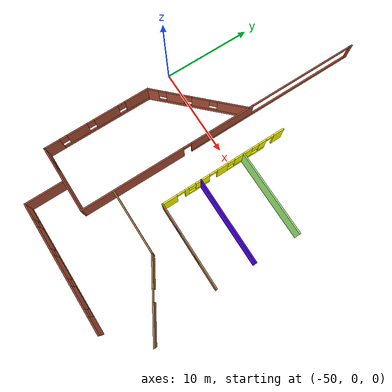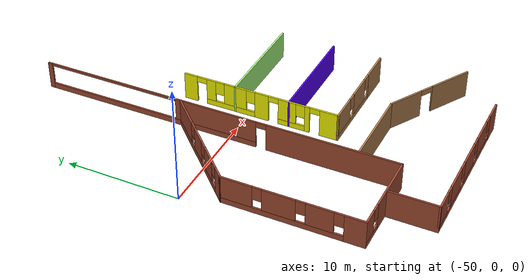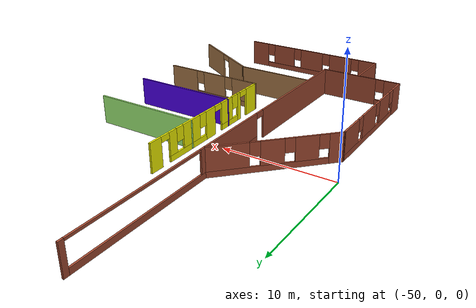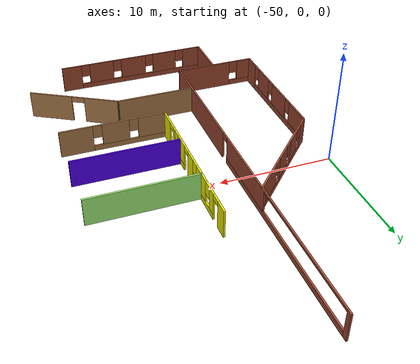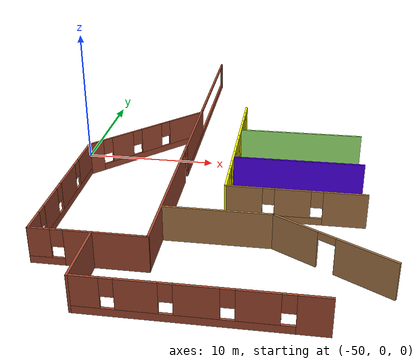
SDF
<sdf version="1.6">
 <model name="spiral_office">
  <pose>-21.9737 -0.990625 0 0 -0 0</pose>
  <link name="Wall_24">
   <pose>-15.9711 -18.1698 0 0 -0 3.14159</pose>
   <visual name="Wall_24_Visual_0">
    <pose>-6.17797 0 1.25 0 -0 0</pose>
    <geometry><box><size>1.89406 0.15 2.5</size></box></geometry>
    <material>
     <script><uri>file://media/materials/scripts/gazebo.material</uri><name>Gazebo/Bricks</name></script>
     <ambient>1 1 1 1</ambient>
    </material>
    <meta><layer>0</layer></meta>
   </visual>
   <collision name="Wall_24_Collision_0">
    <geometry><box><size>1.89406 0.15 2.5</size></box></geometry>
    <pose>-6.17797 0 1.25 0 -0 0</pose>
   </collision>
   <visual name="Wall_24_Visual_1">
    <pose>0.947032 0 0.25 0 -0 0</pose>
    <geometry><box><size>12.3559 0.15 0.5</size></box></geometry>
    <material>
     <script><uri>file://media/materials/scripts/gazebo.material</uri><name>Gazebo/Bricks</name></script>
     <ambient>1 1 1 1</ambient>
    </material>
    <meta><layer>0</layer></meta>
   </visual>
   <collision name="Wall_24_Collision_1">
    <geometry><box><size>12.3559 0.15 0.5</size></box></geometry>
    <pose>0.947032 0 0.25 0 -0 0</pose>
   </collision>
   <visual name="Wall_24_Visual_2">
    <pose>-3.22586 0 1.5 0 -0 0</pose>
    <geometry><box><size>2.41015 0.15 2</size></box></geometry>
    <material>
     <script><uri>file://media/materials/scripts/gazebo.material</uri><name>Gazebo/Bricks</name></script>
     <ambient>1 1 1 1</ambient>
    </material>
    <meta><layer>0</layer></meta>
   </visual>
   <collision name="Wall_24_Collision_2">
    <geometry><box><size>2.41015 0.15 2</size></box></geometry>
    <pose>-3.22586 0 1.5 0 -0 0</pose>
   </collision>
   <visual name="Wall_24_Visual_3">
    <pose>0.037792 0 1.5 0 -0 0</pose>
    <geometry><box><size>2.51715 0.15 2</size></box></geometry>
    <material>
     <script><uri>file://media/materials/scripts/gazebo.material</uri><name>Gazebo/Bricks</name></script>
     <ambient>1 1 1 1</ambient>
    </material>
    <meta><layer>0</layer></meta>
   </visual>
   <collision name="Wall_24_Collision_3">
    <geometry><box><size>2.51715 0.15 2</size></box></geometry>
    <pose>0.037792 0 1.5 0 -0 0</pose>
   </collision>
   <visual name="Wall_24_Visual_4">
    <pose>3.30145 0 1.5 0 -0 0</pose>
    <geometry><box><size>2.41015 0.15 2</size></box></geometry>
    <material>
     <script><uri>file://media/materials/scripts/gazebo.material</uri><name>Gazebo/Bricks</name></script>
     <ambient>1 1 1 1</ambient>
    </material>
    <meta><layer>0</layer></meta>
   </visual>
   <collision name="Wall_24_Collision_4">
    <geometry><box><size>2.41015 0.15 2</size></box></geometry>
    <pose>3.30145 0 1.5 0 -0 0</pose>
   </collision>
   <visual name="Wall_24_Visual_5">
    <pose>6.21576 0 1.5 0 -0 0</pose>
    <geometry><box><size>1.81848 0.15 2</size></box></geometry>
    <material>
     <script><uri>file://media/materials/scripts/gazebo.material</uri><name>Gazebo/Bricks</name></script>
     <ambient>1 1 1 1</ambient>
    </material>
    <meta><layer>0</layer></meta>
   </visual>
   <collision name="Wall_24_Collision_5">
    <geometry><box><size>1.81848 0.15 2</size></box></geometry>
    <pose>6.21576 0 1.5 0 -0 0</pose>
   </collision>
   <visual name="Wall_24_Visual_6">
    <pose>-4.83094 0 1.9 0 -0 0</pose>
    <geometry><box><size>0.8 0.15 1.2</size></box></geometry>
    <material>
     <script><uri>file://media/materials/scripts/gazebo.material</uri><name>Gazebo/Bricks</name></script>
     <ambient>1 1 1 1</ambient>
    </material>
    <meta><layer>0</layer></meta>
   </visual>
   <collision name="Wall_24_Collision_6">
    <geometry><box><size>0.8 0.15 1.2</size></box></geometry>
    <pose>-4.83094 0 1.9 0 -0 0</pose>
   </collision>
   <visual name="Wall_24_Visual_7">
    <pose>-1.62078 0 1.9 0 -0 0</pose>
    <geometry><box><size>0.8 0.15 1.2</size></box></geometry>
    <material>
     <script><uri>file://media/materials/scripts/gazebo.material</uri><name>Gazebo/Bricks</name></script>
     <ambient>1 1 1 1</ambient>
    </material>
    <meta><layer>0</layer></meta>
   </visual>
   <collision name="Wall_24_Collision_7">
    <geometry><box><size>0.8 0.15 1.2</size></box></geometry>
    <pose>-1.62078 0 1.9 0 -0 0</pose>
   </collision>
   <visual name="Wall_24_Visual_8">
    <pose>1.69637 0 1.9 0 -0 0</pose>
    <geometry><box><size>0.8 0.15 1.2</size></box></geometry>
    <material>
     <script><uri>file://media/materials/scripts/gazebo.material</uri><name>Gazebo/Bricks</name></script>
     <ambient>1 1 1 1</ambient>
    </material>
    <meta><layer>0</layer></meta>
   </visual>
   <collision name="Wall_24_Collision_8">
    <geometry><box><size>0.8 0.15 1.2</size></box></geometry>
    <pose>1.69637 0 1.9 0 -0 0</pose>
   </collision>
   <visual name="Wall_24_Visual_9">
    <pose>4.90652 0 1.9 0 -0 0</pose>
    <geometry><box><size>0.8 0.15 1.2</size></box></geometry>
    <material>
     <script><uri>file://media/materials/scripts/gazebo.material</uri><name>Gazebo/Bricks</name></script>
     <ambient>1 1 1 1</ambient>
    </material>
    <meta><layer>0</layer></meta>
   </visual>
   <collision name="Wall_24_Collision_9">
    <geometry><box><size>0.8 0.15 1.2</size></box></geometry>
    <pose>4.90652 0 1.9 0 -0 0</pose>
   </collision>
  </link>
  <link name="Wall_25">
   <collision name="Wall_25_Collision">
    <geometry><box><size>4.25 0.15 2.5</size></box></geometry>
    <pose>0 0 1.25 0 -0 0</pose>
   </collision>
   <visual name="Wall_25_Visual">
    <pose>0 0 1.25 0 -0 0</pose>
    <geometry><box><size>4.25 0.15 2.5</size></box></geometry>
    <material>
     <script><uri>file://media/materials/scripts/gazebo.material</uri><name>Gazebo/Bricks</name></script>
     <ambient>1 1 1 1</ambient>
    </material>
    <meta><layer>0</layer></meta>
   </visual>
   <pose>-23.0211 -16.1198 0 0 -0 1.5708</pose>
  </link>
  <link name="Wall_27">
   <pose>-8.9041 -12.476 0 0 -0 2.61479</pose>
   <visual name="Wall_27_Visual_0">
    <pose>-2.23349 0 1.25 0 -0 0</pose>
    <geometry><box><size>3.98736 0.15 2.5</size></box></geometry>
    <material>
     <script><uri>file://media/materials/scripts/gazebo.material</uri><name>Gazebo/Wood</name></script>
     <ambient>1 1 1 1</ambient>
    </material>
    <meta><layer>0</layer></meta>
   </visual>
   <collision name="Wall_27_Collision_0">
    <geometry><box><size>3.98736 0.15 2.5</size></box></geometry>
    <pose>-2.23349 0 1.25 0 -0 0</pose>
   </collision>
   <visual name="Wall_27_Visual_1">
    <pose>2.59368 0 1.25 0 -0 0</pose>
    <geometry><box><size>3.26697 0.15 2.5</size></box></geometry>
    <material>
     <script><uri>file://media/materials/scripts/gazebo.material</uri><name>Gazebo/Wood</name></script>
     <ambient>1 1 1 1</ambient>
    </material>
    <meta><layer>0</layer></meta>
   </visual>
   <collision name="Wall_27_Collision_1">
    <geometry><box><size>3.26697 0.15 2.5</size></box></geometry>
    <pose>2.59368 0 1.25 0 -0 0</pose>
   </collision>
   <visual name="Wall_27_Visual_2">
    <pose>0.360193 0 2.25 0 -0 0</pose>
    <geometry><box><size>1.2 0.15 0.5</size></box></geometry>
    <material>
     <script><uri>file://media/materials/scripts/gazebo.material</uri><name>Gazebo/Wood</name></script>
     <ambient>1 1 1 1</ambient>
    </material>
    <meta><layer>0</layer></meta>
   </visual>
   <collision name="Wall_27_Collision_2">
    <geometry><box><size>1.2 0.15 0.5</size></box></geometry>
    <pose>0.360193 0 2.25 0 -0 0</pose>
   </collision>
  </link>
  <link name="Wall_28">
   <collision name="Wall_28_Collision">
    <geometry><box><size>7.1 0.15 2.5</size></box></geometry>
    <pose>0 0 1.25 0 -0 0</pose>
   </collision>
   <visual name="Wall_28_Visual">
    <pose>0 0 1.25 0 -0 0</pose>
    <geometry><box><size>7.1 0.15 2.5</size></box></geometry>
    <material>
     <script><uri>file://media/materials/scripts/gazebo.material</uri><name>Gazebo/Wood</name></script>
     <ambient>1 1 1 1</ambient>
    </material>
    <meta><layer>0</layer></meta>
   </visual>
   <pose>-15.9683 -10.3884 0 0 -0 3.14159</pose>
  </link>
  <link name="Wall_37">
   <pose>-11.2292 -7.11111 0 0 -0 3.14159</pose>
   <visual name="Wall_37_Visual_0">
    <pose>-3.28826 0 1.25 0 -0 0</pose>
    <geometry><box><size>2.92347 0.15 2.5</size></box></geometry>
    <material>
     <script><uri>file://media/materials/scripts/gazebo.material</uri><name>Gazebo/Wood</name></script>
     <ambient>1 1 1 1</ambient>
    </material>
    <meta><layer>0</layer></meta>
   </visual>
   <collision name="Wall_37_Collision_0">
    <geometry><box><size>2.92347 0.15 2.5</size></box></geometry>
    <pose>-3.28826 0 1.25 0 -0 0</pose>
   </collision>
   <visual name="Wall_37_Visual_1">
    <pose>1.46174 0 0.25 0 -0 0</pose>
    <geometry><box><size>6.57653 0.15 0.5</size></box></geometry>
    <material>
     <script><uri>file://media/materials/scripts/gazebo.material</uri><name>Gazebo/Wood</name></script>
     <ambient>1 1 1 1</ambient>
    </material>
    <meta><layer>0</layer></meta>
   </visual>
   <collision name="Wall_37_Collision_1">
    <geometry><box><size>6.57653 0.15 0.5</size></box></geometry>
    <pose>1.46174 0 0.25 0 -0 0</pose>
   </collision>
   <visual name="Wall_37_Visual_2">
    <pose>0.178551 0 1.5 0 -0 0</pose>
    <geometry><box><size>2.41015 0.15 2</size></box></geometry>
    <material>
     <script><uri>file://media/materials/scripts/gazebo.material</uri><name>Gazebo/Wood</name></script>
     <ambient>1 1 1 1</ambient>
    </material>
    <meta><layer>0</layer></meta>
   </visual>
   <collision name="Wall_37_Collision_2">
    <geometry><box><size>2.41015 0.15 2</size></box></geometry>
    <pose>0.178551 0 1.5 0 -0 0</pose>
   </collision>
   <visual name="Wall_37_Visual_3">
    <pose>3.46681 0 1.5 0 -0 0</pose>
    <geometry><box><size>2.56637 0.15 2</size></box></geometry>
    <material>
     <script><uri>file://media/materials/scripts/gazebo.material</uri><name>Gazebo/Wood</name></script>
     <ambient>1 1 1 1</ambient>
    </material>
    <meta><layer>0</layer></meta>
   </visual>
   <collision name="Wall_37_Collision_3">
    <geometry><box><size>2.56637 0.15 2</size></box></geometry>
    <pose>3.46681 0 1.5 0 -0 0</pose>
   </collision>
   <visual name="Wall_37_Visual_4">
    <pose>-1.42653 0 1.9 0 -0 0</pose>
    <geometry><box><size>0.8 0.15 1.2</size></box></geometry>
    <material>
     <script><uri>file://media/materials/scripts/gazebo.material</uri><name>Gazebo/Wood</name></script>
     <ambient>1 1 1 1</ambient>
    </material>
    <meta><layer>0</layer></meta>
   </visual>
   <collision name="Wall_37_Collision_4">
    <geometry><box><size>0.8 0.15 1.2</size></box></geometry>
    <pose>-1.42653 0 1.9 0 -0 0</pose>
   </collision>
   <visual name="Wall_37_Visual_5">
    <pose>1.78363 0 1.9 0 -0 0</pose>
    <geometry><box><size>0.8 0.15 1.2</size></box></geometry>
    <material>
     <script><uri>file://media/materials/scripts/gazebo.material</uri><name>Gazebo/Wood</name></script>
     <ambient>1 1 1 1</ambient>
    </material>
    <meta><layer>0</layer></meta>
   </visual>
   <collision name="Wall_37_Collision_5">
    <geometry><box><size>0.8 0.15 1.2</size></box></geometry>
    <pose>1.78363 0 1.9 0 -0 0</pose>
   </collision>
  </link>
  <link name="Wall_38">
   <pose>-15.9042 -0.061107 0 0 -0 1.5708</pose>
   <visual name="Wall_38_Visual_0">
    <pose>-6.27959 0 1.25 0 -0 0</pose>
    <geometry><box><size>1.69081 0.15 2.5</size></box></geometry>
    <material>
     <script><uri>file://media/materials/scripts/gazebo.material</uri><name>Gazebo/Grey</name></script>
     <ambient>1 1 0 1</ambient>
    </material>
    <meta><layer>0</layer></meta>
   </visual>
   <collision name="Wall_38_Collision_0">
    <geometry><box><size>1.69081 0.15 2.5</size></box></geometry>
    <pose>-6.27959 0 1.25 0 -0 0</pose>
   </collision>
   <visual name="Wall_38_Visual_1">
    <pose>-4.31572 0 1.25 0 -0 0</pose>
    <geometry><box><size>0.436935 0.15 2.5</size></box></geometry>
    <material>
     <script><uri>file://media/materials/scripts/gazebo.material</uri><name>Gazebo/Grey</name></script>
     <ambient>1 1 0 1</ambient>
    </material>
    <meta><layer>0</layer></meta>
   </visual>
   <collision name="Wall_38_Collision_1">
    <geometry><box><size>0.436935 0.15 2.5</size></box></geometry>
    <pose>-4.31572 0 1.25 0 -0 0</pose>
   </collision>
   <visual name="Wall_38_Visual_2">
    <pose>-0.169275 0 1.25 0 -0 0</pose>
    <geometry><box><size>1.23947 0.15 2.5</size></box></geometry>
    <material>
     <script><uri>file://media/materials/scripts/gazebo.material</uri><name>Gazebo/Grey</name></script>
     <ambient>1 1 0 1</ambient>
    </material>
    <meta><layer>0</layer></meta>
   </visual>
   <collision name="Wall_38_Collision_2">
    <geometry><box><size>1.23947 0.15 2.5</size></box></geometry>
    <pose>-0.169275 0 1.25 0 -0 0</pose>
   </collision>
   <visual name="Wall_38_Visual_3">
    <pose>6.5119 0 1.25 0 -0 0</pose>
    <geometry><box><size>1.2262 0.15 2.5</size></box></geometry>
    <material>
     <script><uri>file://media/materials/scripts/gazebo.material</uri><name>Gazebo/Grey</name></script>
     <ambient>1 1 0 1</ambient>
    </material>
    <meta><layer>0</layer></meta>
   </visual>
   <collision name="Wall_38_Collision_3">
    <geometry><box><size>1.2262 0.15 2.5</size></box></geometry>
    <pose>6.5119 0 1.25 0 -0 0</pose>
   </collision>
   <visual name="Wall_38_Visual_4">
    <pose>-2.89313 0 0.25 0 -0 0</pose>
    <geometry><box><size>2.40824 0.15 0.5</size></box></geometry>
    <material>
     <script><uri>file://media/materials/scripts/gazebo.material</uri><name>Gazebo/Grey</name></script>
     <ambient>1 1 0 1</ambient>
    </material>
    <meta><layer>0</layer></meta>
   </visual>
   <collision name="Wall_38_Collision_4">
    <geometry><box><size>2.40824 0.15 0.5</size></box></geometry>
    <pose>-2.89313 0 0.25 0 -0 0</pose>
   </collision>
   <visual name="Wall_38_Visual_5">
    <pose>2.72463 0 0.25 0 -0 0</pose>
    <geometry><box><size>4.54834 0.15 0.5</size></box></geometry>
    <material>
     <script><uri>file://media/materials/scripts/gazebo.material</uri><name>Gazebo/Grey</name></script>
     <ambient>1 1 0 1</ambient>
    </material>
    <meta><layer>0</layer></meta>
   </visual>
   <collision name="Wall_38_Collision_5">
    <geometry><box><size>4.54834 0.15 0.5</size></box></geometry>
    <pose>2.72463 0 0.25 0 -0 0</pose>
   </collision>
   <visual name="Wall_38_Visual_6">
    <pose>-2.49313 0 1.5 0 -0 0</pose>
    <geometry><box><size>1.60824 0.15 2</size></box></geometry>
    <material>
     <script><uri>file://media/materials/scripts/gazebo.material</uri><name>Gazebo/Grey</name></script>
     <ambient>1 1 0 1</ambient>
    </material>
    <meta><layer>0</layer></meta>
   </visual>
   <collision name="Wall_38_Collision_6">
    <geometry><box><size>1.60824 0.15 2</size></box></geometry>
    <pose>-2.49313 0 1.5 0 -0 0</pose>
   </collision>
   <visual name="Wall_38_Visual_7">
    <pose>-2.49313 0 1.5 0 -0 0</pose>
    <geometry><box><size>1.60824 0.15 2</size></box></geometry>
    <material>
     <script><uri>file://media/materials/scripts/gazebo.material</uri><name>Gazebo/Grey</name></script>
     <ambient>1 1 0 1</ambient>
    </material>
    <meta><layer>0</layer></meta>
   </visual>
   <collision name="Wall_38_Collision_7">
    <geometry><box><size>1.60824 0.15 2</size></box></geometry>
    <pose>-2.49313 0 1.5 0 -0 0</pose>
   </collision>
   <visual name="Wall_38_Visual_8">
    <pose>2.29503 0 1.5 0 -0 0</pose>
    <geometry><box><size>2.08914 0.15 2</size></box></geometry>
    <material>
     <script><uri>file://media/materials/scripts/gazebo.material</uri><name>Gazebo/Grey</name></script>
     <ambient>1 1 0 1</ambient>
    </material>
    <meta><layer>0</layer></meta>
   </visual>
   <collision name="Wall_38_Collision_8">
    <geometry><box><size>2.08914 0.15 2</size></box></geometry>
    <pose>2.29503 0 1.5 0 -0 0</pose>
   </collision>
   <visual name="Wall_38_Visual_9">
    <pose>4.5692 0 1.5 0 -0 0</pose>
    <geometry><box><size>0.859205 0.15 2</size></box></geometry>
    <material>
     <script><uri>file://media/materials/scripts/gazebo.material</uri><name>Gazebo/Grey</name></script>
     <ambient>1 1 0 1</ambient>
    </material>
    <meta><layer>0</layer></meta>
   </visual>
   <collision name="Wall_38_Collision_9">
    <geometry><box><size>0.859205 0.15 2</size></box></geometry>
    <pose>4.5692 0 1.5 0 -0 0</pose>
   </collision>
   <visual name="Wall_38_Visual_10">
    <pose>-3.69725 0 1.9 0 -0 0</pose>
    <geometry><box><size>0.8 0.15 1.2</size></box></geometry>
    <material>
     <script><uri>file://media/materials/scripts/gazebo.material</uri><name>Gazebo/Grey</name></script>
     <ambient>1 1 0 1</ambient>
    </material>
    <meta><layer>0</layer></meta>
   </visual>
   <collision name="Wall_38_Collision_10">
    <geometry><box><size>0.8 0.15 1.2</size></box></geometry>
    <pose>-3.69725 0 1.9 0 -0 0</pose>
   </collision>
   <visual name="Wall_38_Visual_11">
    <pose>0.850461 0 1.9 0 -0 0</pose>
    <geometry><box><size>0.8 0.15 1.2</size></box></geometry>
    <material>
     <script><uri>file://media/materials/scripts/gazebo.material</uri><name>Gazebo/Grey</name></script>
     <ambient>1 1 0 1</ambient>
    </material>
    <meta><layer>0</layer></meta>
   </visual>
   <collision name="Wall_38_Collision_11">
    <geometry><box><size>0.8 0.15 1.2</size></box></geometry>
    <pose>0.850461 0 1.9 0 -0 0</pose>
   </collision>
   <visual name="Wall_38_Visual_12">
    <pose>3.7396 0 1.9 0 -0 0</pose>
    <geometry><box><size>0.8 0.15 1.2</size></box></geometry>
    <material>
     <script><uri>file://media/materials/scripts/gazebo.material</uri><name>Gazebo/Grey</name></script>
     <ambient>1 1 0 1</ambient>
    </material>
    <meta><layer>0</layer></meta>
   </visual>
   <collision name="Wall_38_Collision_12">
    <geometry><box><size>0.8 0.15 1.2</size></box></geometry>
    <pose>3.7396 0 1.9 0 -0 0</pose>
   </collision>
   <visual name="Wall_38_Visual_13">
    <pose>-4.98419 0 2.25 0 -0 0</pose>
    <geometry><box><size>0.9 0.15 0.5</size></box></geometry>
    <material>
     <script><uri>file://media/materials/scripts/gazebo.material</uri><name>Gazebo/Grey</name></script>
     <ambient>1 1 0 1</ambient>
    </material>
    <meta><layer>0</layer></meta>
   </visual>
   <collision name="Wall_38_Collision_13">
    <geometry><box><size>0.9 0.15 0.5</size></box></geometry>
    <pose>-4.98419 0 2.25 0 -0 0</pose>
   </collision>
   <visual name="Wall_38_Visual_14">
    <pose>-1.23901 0 2.25 0 -0 0</pose>
    <geometry><box><size>0.9 0.15 0.5</size></box></geometry>
    <material>
     <script><uri>file://media/materials/scripts/gazebo.material</uri><name>Gazebo/Grey</name></script>
     <ambient>1 1 0 1</ambient>
    </material>
    <meta><layer>0</layer></meta>
   </visual>
   <collision name="Wall_38_Collision_14">
    <geometry><box><size>0.9 0.15 0.5</size></box></geometry>
    <pose>-1.23901 0 2.25 0 -0 0</pose>
   </collision>
   <visual name="Wall_38_Visual_15">
    <pose>-1.23901 0 2.25 0 -0 0</pose>
    <geometry><box><size>0.9 0.15 0.5</size></box></geometry>
    <material>
     <script><uri>file://media/materials/scripts/gazebo.material</uri><name>Gazebo/Grey</name></script>
     <ambient>1 1 0 1</ambient>
    </material>
    <meta><layer>0</layer></meta>
   </visual>
   <collision name="Wall_38_Collision_15">
    <geometry><box><size>0.9 0.15 0.5</size></box></geometry>
    <pose>-1.23901 0 2.25 0 -0 0</pose>
   </collision>
   <visual name="Wall_38_Visual_16">
    <pose>5.4488 0 2.25 0 -0 0</pose>
    <geometry><box><size>0.9 0.15 0.5</size></box></geometry>
    <material>
     <script><uri>file://media/materials/scripts/gazebo.material</uri><name>Gazebo/Grey</name></script>
     <ambient>1 1 0 1</ambient>
    </material>
    <meta><layer>0</layer></meta>
   </visual>
   <collision name="Wall_38_Collision_16">
    <geometry><box><size>0.9 0.15 0.5</size></box></geometry>
    <pose>5.4488 0 2.25 0 -0 0</pose>
   </collision>
  </link>
  <link name="Wall_5">
   <pose>-19.5846 2.22564 0 0 0 -1.5708</pose>
   <visual name="Wall_5_Visual_0">
    <pose>-16.0373 0 1.25 0 -0 0</pose>
    <geometry><box><size>0.425449 0.15 2.5</size></box></geometry>
    <material>
     <script><uri>file://media/materials/scripts/gazebo.material</uri><name>Gazebo/Bricks</name></script>
     <ambient>1 1 1 1</ambient>
    </material>
    <meta><layer>0</layer></meta>
   </visual>
   <collision name="Wall_5_Collision_0">
    <geometry><box><size>0.425449 0.15 2.5</size></box></geometry>
    <pose>-16.0373 0 1.25 0 -0 0</pose>
   </collision>
   <visual name="Wall_5_Visual_1">
    <pose>10.4339 0 1.25 0 -0 0</pose>
    <geometry><box><size>11.6322 0.15 2.5</size></box></geometry>
    <material>
     <script><uri>file://media/materials/scripts/gazebo.material</uri><name>Gazebo/Bricks</name></script>
     <ambient>1 1 1 1</ambient>
    </material>
    <meta><layer>0</layer></meta>
   </visual>
   <collision name="Wall_5_Collision_1">
    <geometry><box><size>11.6322 0.15 2.5</size></box></geometry>
    <pose>10.4339 0 1.25 0 -0 0</pose>
   </collision>
   <visual name="Wall_5_Visual_2">
    <pose>-6.05338 0 0.25 0 -0 0</pose>
    <geometry><box><size>19.5423 0.15 0.5</size></box></geometry>
    <material>
     <script><uri>file://media/materials/scripts/gazebo.material</uri><name>Gazebo/Bricks</name></script>
     <ambient>1 1 1 1</ambient>
    </material>
    <meta><layer>0</layer></meta>
   </visual>
   <collision name="Wall_5_Collision_2">
    <geometry><box><size>19.5423 0.15 0.5</size></box></geometry>
    <pose>-6.05338 0 0.25 0 -0 0</pose>
   </collision>
   <visual name="Wall_5_Visual_3">
    <pose>0.021618 0 1.5 0 -0 0</pose>
    <geometry><box><size>7.39234 0.15 2</size></box></geometry>
    <material>
     <script><uri>file://media/materials/scripts/gazebo.material</uri><name>Gazebo/Bricks</name></script>
     <ambient>1 1 1 1</ambient>
    </material>
    <meta><layer>0</layer></meta>
   </visual>
   <collision name="Wall_5_Collision_3">
    <geometry><box><size>7.39234 0.15 2</size></box></geometry>
    <pose>0.021618 0 1.5 0 -0 0</pose>
   </collision>
   <visual name="Wall_5_Visual_4">
    <pose>4.16779 0 2.25 0 -0 0</pose>
    <geometry><box><size>0.9 0.15 0.5</size></box></geometry>
    <material>
     <script><uri>file://media/materials/scripts/gazebo.material</uri><name>Gazebo/Bricks</name></script>
     <ambient>1 1 1 1</ambient>
    </material>
    <meta><layer>0</layer></meta>
   </visual>
   <collision name="Wall_5_Collision_4">
    <geometry><box><size>0.9 0.15 0.5</size></box></geometry>
    <pose>4.16779 0 2.25 0 -0 0</pose>
   </collision>
   <visual name="Wall_5_Visual_5">
    <pose>-9.74955 0 2.4 0 -0 0</pose>
    <geometry><box><size>12.15 0.15 0.2</size></box></geometry>
    <material>
     <script><uri>file://media/materials/scripts/gazebo.material</uri><name>Gazebo/Bricks</name></script>
     <ambient>1 1 1 1</ambient>
    </material>
    <meta><layer>0</layer></meta>
   </visual>
   <collision name="Wall_5_Collision_5">
    <geometry><box><size>12.15 0.15 0.2</size></box></geometry>
    <pose>-9.74955 0 2.4 0 -0 0</pose>
   </collision>
  </link>
  <link name="Wall_51">
   <collision name="Wall_51_Collision">
    <geometry><box><size>9.5 0.15 2.5</size></box></geometry>
    <pose>0 0 1.25 0 -0 0</pose>
   </collision>
   <visual name="Wall_51_Visual">
    <pose>0 0 1.25 0 -0 0</pose>
    <geometry><box><size>9.5 0.15 2.5</size></box></geometry>
    <material>
     <script><uri>file://media/materials/scripts/gazebo.material</uri><name>Gazebo/Grey</name></script>
     <ambient>0.333333 0 1 1</ambient>
    </material>
    <meta><layer>0</layer></meta>
   </visual>
   <pose>-11.2314 -2.73251 0 0 -0 0</pose>
  </link>
  <link name="Wall_53">
   <collision name="Wall_53_Collision">
    <geometry><box><size>9.5 0.15 2.5</size></box></geometry>
    <pose>0 0 1.25 0 -0 0</pose>
   </collision>
   <visual name="Wall_53_Visual">
    <pose>0 0 1.25 0 -0 0</pose>
    <geometry><box><size>9.5 0.15 2.5</size></box></geometry>
    <material>
     <script><uri>file://media/materials/scripts/gazebo.material</uri><name>Gazebo/Grey</name></script>
     <ambient>0.666667 1 0.498039 1</ambient>
    </material>
    <meta><layer>0</layer></meta>
   </visual>
   <pose>-11.2314 2.25125 0 0 -0 0</pose>
  </link>
  <link name="Wall_6">
   <pose>-23.2596 -13.9494 0 0 -0 3.14159</pose>
   <visual name="Wall_6_Visual_0">
    <pose>-1.12907 0 1.25 0 -0 0</pose>
    <geometry><box><size>5.24185 0.15 2.5</size></box></geometry>
    <material>
     <script><uri>file://media/materials/scripts/gazebo.material</uri><name>Gazebo/Bricks</name></script>
     <ambient>1 1 1 1</ambient>
    </material>
    <meta><layer>0</layer></meta>
   </visual>
   <collision name="Wall_6_Collision_0">
    <geometry><box><size>5.24185 0.15 2.5</size></box></geometry>
    <pose>-1.12907 0 1.25 0 -0 0</pose>
   </collision>
   <visual name="Wall_6_Visual_1">
    <pose>2.62093 0 0.25 0 -0 0</pose>
    <geometry><box><size>2.25815 0.15 0.5</size></box></geometry>
    <material>
     <script><uri>file://media/materials/scripts/gazebo.material</uri><name>Gazebo/Bricks</name></script>
     <ambient>1 1 1 1</ambient>
    </material>
    <meta><layer>0</layer></meta>
   </visual>
   <collision name="Wall_6_Collision_1">
    <geometry><box><size>2.25815 0.15 0.5</size></box></geometry>
    <pose>2.62093 0 0.25 0 -0 0</pose>
   </collision>
   <visual name="Wall_6_Visual_2">
    <pose>3.02093 0 1.5 0 -0 0</pose>
    <geometry><box><size>1.45815 0.15 2</size></box></geometry>
    <material>
     <script><uri>file://media/materials/scripts/gazebo.material</uri><name>Gazebo/Bricks</name></script>
     <ambient>1 1 1 1</ambient>
    </material>
    <meta><layer>0</layer></meta>
   </visual>
   <collision name="Wall_6_Collision_2">
    <geometry><box><size>1.45815 0.15 2</size></box></geometry>
    <pose>3.02093 0 1.5 0 -0 0</pose>
   </collision>
   <visual name="Wall_6_Visual_3">
    <pose>1.89185 0 1.9 0 -0 0</pose>
    <geometry><box><size>0.8 0.15 1.2</size></box></geometry>
    <material>
     <script><uri>file://media/materials/scripts/gazebo.material</uri><name>Gazebo/Bricks</name></script>
     <ambient>1 1 1 1</ambient>
    </material>
    <meta><layer>0</layer></meta>
   </visual>
   <collision name="Wall_6_Collision_3">
    <geometry><box><size>0.8 0.15 1.2</size></box></geometry>
    <pose>1.89185 0 1.9 0 -0 0</pose>
   </collision>
  </link>
  <link name="Wall_7">
   <pose>-26.9345 -8.02437 0 0 -0 1.57077</pose>
   <visual name="Wall_7_Visual_0">
    <pose>-5.10444 0 1.25 0 -0 0</pose>
    <geometry><box><size>1.79113 0.15 2.5</size></box></geometry>
    <material>
     <script><uri>file://media/materials/scripts/gazebo.material</uri><name>Gazebo/Bricks</name></script>
     <ambient>1 1 1 1</ambient>
    </material>
    <meta><layer>0</layer></meta>
   </visual>
   <collision name="Wall_7_Collision_0">
    <geometry><box><size>1.79113 0.15 2.5</size></box></geometry>
    <pose>-5.10444 0 1.25 0 -0 0</pose>
   </collision>
   <visual name="Wall_7_Visual_1">
    <pose>0.895564 0 0.25 0 -0 0</pose>
    <geometry><box><size>10.2089 0.15 0.5</size></box></geometry>
    <material>
     <script><uri>file://media/materials/scripts/gazebo.material</uri><name>Gazebo/Bricks</name></script>
     <ambient>1 1 1 1</ambient>
    </material>
    <meta><layer>0</layer></meta>
   </visual>
   <collision name="Wall_7_Collision_1">
    <geometry><box><size>10.2089 0.15 0.5</size></box></geometry>
    <pose>0.895564 0 0.25 0 -0 0</pose>
   </collision>
   <visual name="Wall_7_Visual_2">
    <pose>-2.27068 0 1.5 0 -0 0</pose>
    <geometry><box><size>2.27639 0.15 2</size></box></geometry>
    <material>
     <script><uri>file://media/materials/scripts/gazebo.material</uri><name>Gazebo/Bricks</name></script>
     <ambient>1 1 1 1</ambient>
    </material>
    <meta><layer>0</layer></meta>
   </visual>
   <collision name="Wall_7_Collision_2">
    <geometry><box><size>2.27639 0.15 2</size></box></geometry>
    <pose>-2.27068 0 1.5 0 -0 0</pose>
   </collision>
   <visual name="Wall_7_Visual_3">
    <pose>1.05183 0 1.5 0 -0 0</pose>
    <geometry><box><size>2.76862 0.15 2</size></box></geometry>
    <material>
     <script><uri>file://media/materials/scripts/gazebo.material</uri><name>Gazebo/Bricks</name></script>
     <ambient>1 1 1 1</ambient>
    </material>
    <meta><layer>0</layer></meta>
   </visual>
   <collision name="Wall_7_Collision_3">
    <geometry><box><size>2.76862 0.15 2</size></box></geometry>
    <pose>1.05183 0 1.5 0 -0 0</pose>
   </collision>
   <visual name="Wall_7_Visual_4">
    <pose>4.61807 0 1.5 0 -0 0</pose>
    <geometry><box><size>2.76386 0.15 2</size></box></geometry>
    <material>
     <script><uri>file://media/materials/scripts/gazebo.material</uri><name>Gazebo/Bricks</name></script>
     <ambient>1 1 1 1</ambient>
    </material>
    <meta><layer>0</layer></meta>
   </visual>
   <collision name="Wall_7_Collision_4">
    <geometry><box><size>2.76386 0.15 2</size></box></geometry>
    <pose>4.61807 0 1.5 0 -0 0</pose>
   </collision>
   <visual name="Wall_7_Visual_5">
    <pose>-3.80887 0 1.9 0 -0 0</pose>
    <geometry><box><size>0.8 0.15 1.2</size></box></geometry>
    <material>
     <script><uri>file://media/materials/scripts/gazebo.material</uri><name>Gazebo/Bricks</name></script>
     <ambient>1 1 1 1</ambient>
    </material>
    <meta><layer>0</layer></meta>
   </visual>
   <collision name="Wall_7_Collision_5">
    <geometry><box><size>0.8 0.15 1.2</size></box></geometry>
    <pose>-3.80887 0 1.9 0 -0 0</pose>
   </collision>
   <visual name="Wall_7_Visual_6">
    <pose>-0.732479 0 1.9 0 -0 0</pose>
    <geometry><box><size>0.8 0.15 1.2</size></box></geometry>
    <material>
     <script><uri>file://media/materials/scripts/gazebo.material</uri><name>Gazebo/Bricks</name></script>
     <ambient>1 1 1 1</ambient>
    </material>
    <meta><layer>0</layer></meta>
   </visual>
   <collision name="Wall_7_Collision_6">
    <geometry><box><size>0.8 0.15 1.2</size></box></geometry>
    <pose>-0.732479 0 1.9 0 -0 0</pose>
   </collision>
   <visual name="Wall_7_Visual_7">
    <pose>2.83614 0 1.9 0 -0 0</pose>
    <geometry><box><size>0.8 0.15 1.2</size></box></geometry>
    <material>
     <script><uri>file://media/materials/scripts/gazebo.material</uri><name>Gazebo/Bricks</name></script>
     <ambient>1 1 1 1</ambient>
    </material>
    <meta><layer>0</layer></meta>
   </visual>
   <collision name="Wall_7_Collision_7">
    <geometry><box><size>0.8 0.15 1.2</size></box></geometry>
    <pose>2.83614 0 1.9 0 -0 0</pose>
   </collision>
  </link>
  <link name="Wall_8">
   <pose>-23.2803 1.64813 0 0 -0 0.79803</pose>
   <visual name="Wall_8_Visual_0">
    <pose>-4.69349 0 1.25 0 -0 0</pose>
    <geometry><box><size>1.23115 0.15 2.5</size></box></geometry>
    <material>
     <script><uri>file://media/materials/scripts/gazebo.material</uri><name>Gazebo/Bricks</name></script>
     <ambient>1 1 1 1</ambient>
    </material>
    <meta><layer>0</layer></meta>
   </visual>
   <collision name="Wall_8_Collision_0">
    <geometry><box><size>1.23115 0.15 2.5</size></box></geometry>
    <pose>-4.69349 0 1.25 0 -0 0</pose>
   </collision>
   <visual name="Wall_8_Visual_1">
    <pose>0.615576 0 0.25 0 -0 0</pose>
    <geometry><box><size>9.38698 0.15 0.5</size></box></geometry>
    <material>
     <script><uri>file://media/materials/scripts/gazebo.material</uri><name>Gazebo/Bricks</name></script>
     <ambient>1 1 1 1</ambient>
    </material>
    <meta><layer>0</layer></meta>
   </visual>
   <collision name="Wall_8_Collision_1">
    <geometry><box><size>9.38698 0.15 0.5</size></box></geometry>
    <pose>0.615576 0 0.25 0 -0 0</pose>
   </collision>
   <visual name="Wall_8_Visual_2">
    <pose>-2.35189 0 1.5 0 -0 0</pose>
    <geometry><box><size>1.85205 0.15 2</size></box></geometry>
    <material>
     <script><uri>file://media/materials/scripts/gazebo.material</uri><name>Gazebo/Bricks</name></script>
     <ambient>1 1 1 1</ambient>
    </material>
    <meta><layer>0</layer></meta>
   </visual>
   <collision name="Wall_8_Collision_2">
    <geometry><box><size>1.85205 0.15 2</size></box></geometry>
    <pose>-2.35189 0 1.5 0 -0 0</pose>
   </collision>
   <visual name="Wall_8_Visual_3">
    <pose>0.302361 0 1.5 0 -0 0</pose>
    <geometry><box><size>1.85645 0.15 2</size></box></geometry>
    <material>
     <script><uri>file://media/materials/scripts/gazebo.material</uri><name>Gazebo/Bricks</name></script>
     <ambient>1 1 1 1</ambient>
    </material>
    <meta><layer>0</layer></meta>
   </visual>
   <collision name="Wall_8_Collision_3">
    <geometry><box><size>1.85645 0.15 2</size></box></geometry>
    <pose>0.302361 0 1.5 0 -0 0</pose>
   </collision>
   <visual name="Wall_8_Visual_4">
    <pose>3.66983 0 1.5 0 -0 0</pose>
    <geometry><box><size>3.27848 0.15 2</size></box></geometry>
    <material>
     <script><uri>file://media/materials/scripts/gazebo.material</uri><name>Gazebo/Bricks</name></script>
     <ambient>1 1 1 1</ambient>
    </material>
    <meta><layer>0</layer></meta>
   </visual>
   <collision name="Wall_8_Collision_4">
    <geometry><box><size>3.27848 0.15 2</size></box></geometry>
    <pose>3.66983 0 1.5 0 -0 0</pose>
   </collision>
   <visual name="Wall_8_Visual_5">
    <pose>-3.67792 0 1.9 0 -0 0</pose>
    <geometry><box><size>0.8 0.15 1.2</size></box></geometry>
    <material>
     <script><uri>file://media/materials/scripts/gazebo.material</uri><name>Gazebo/Bricks</name></script>
     <ambient>1 1 1 1</ambient>
    </material>
    <meta><layer>0</layer></meta>
   </visual>
   <collision name="Wall_8_Collision_5">
    <geometry><box><size>0.8 0.15 1.2</size></box></geometry>
    <pose>-3.67792 0 1.9 0 -0 0</pose>
   </collision>
   <visual name="Wall_8_Visual_6">
    <pose>-1.02587 0 1.9 0 -0 0</pose>
    <geometry><box><size>0.8 0.15 1.2</size></box></geometry>
    <material>
     <script><uri>file://media/materials/scripts/gazebo.material</uri><name>Gazebo/Bricks</name></script>
     <ambient>1 1 1 1</ambient>
    </material>
    <meta><layer>0</layer></meta>
   </visual>
   <collision name="Wall_8_Collision_6">
    <geometry><box><size>0.8 0.15 1.2</size></box></geometry>
    <pose>-1.02587 0 1.9 0 -0 0</pose>
   </collision>
   <visual name="Wall_8_Visual_7">
    <pose>1.63059 0 1.9 0 -0 0</pose>
    <geometry><box><size>0.8 0.15 1.2</size></box></geometry>
    <material>
     <script><uri>file://media/materials/scripts/gazebo.material</uri><name>Gazebo/Bricks</name></script>
     <ambient>1 1 1 1</ambient>
    </material>
    <meta><layer>0</layer></meta>
   </visual>
   <collision name="Wall_8_Collision_7">
    <geometry><box><size>0.8 0.15 1.2</size></box></geometry>
    <pose>1.63059 0 1.9 0 -0 0</pose>
   </collision>
  </link>
  <static>1</static>
 </model>
</sdf>
